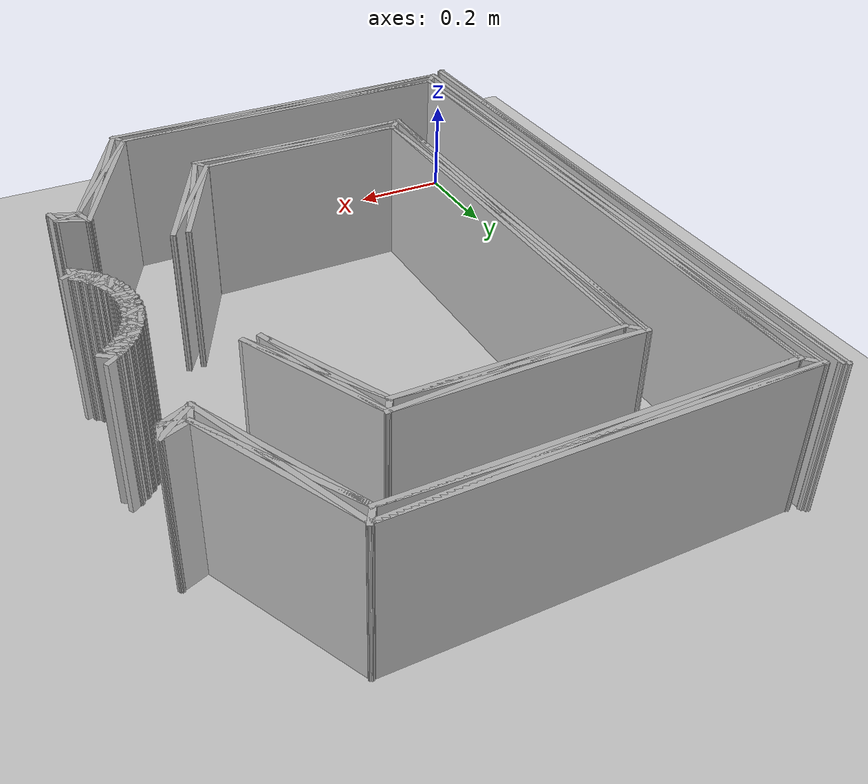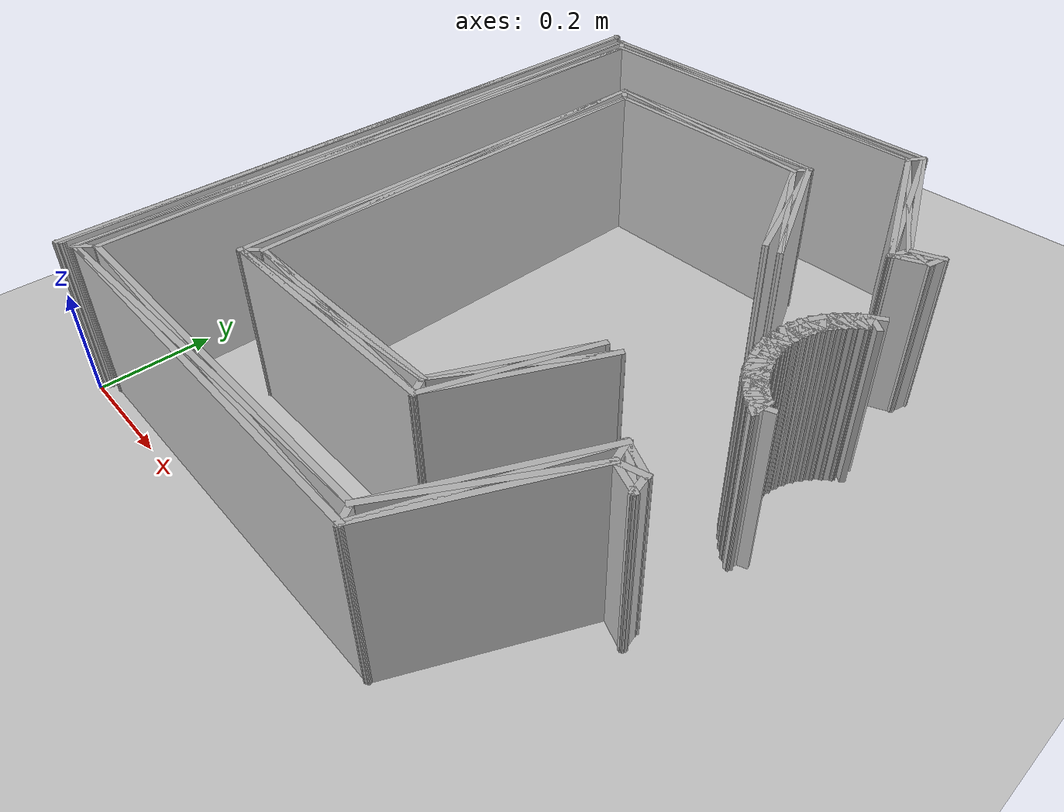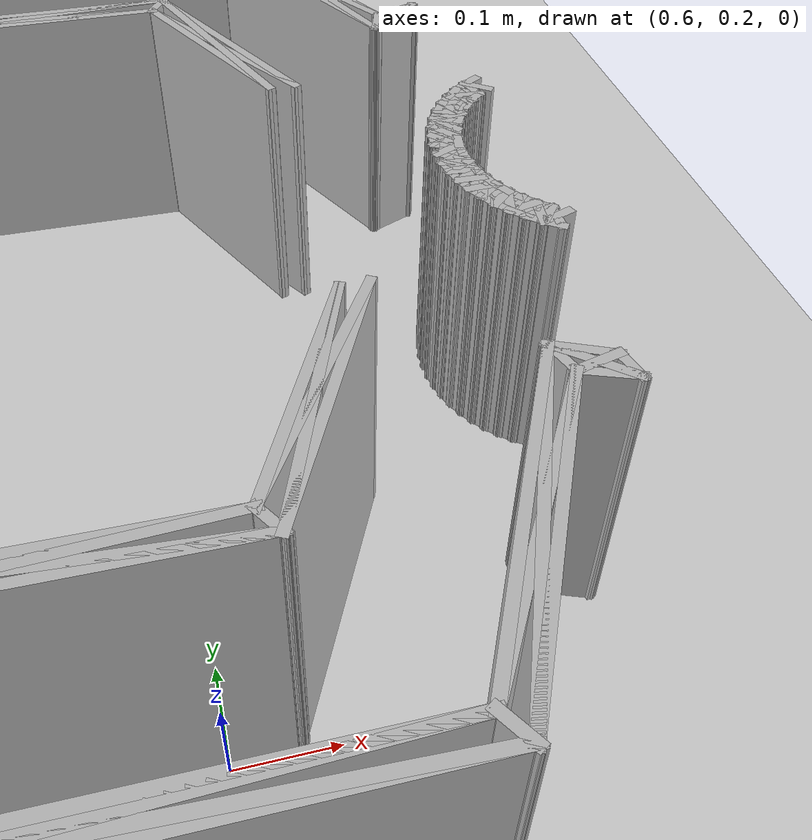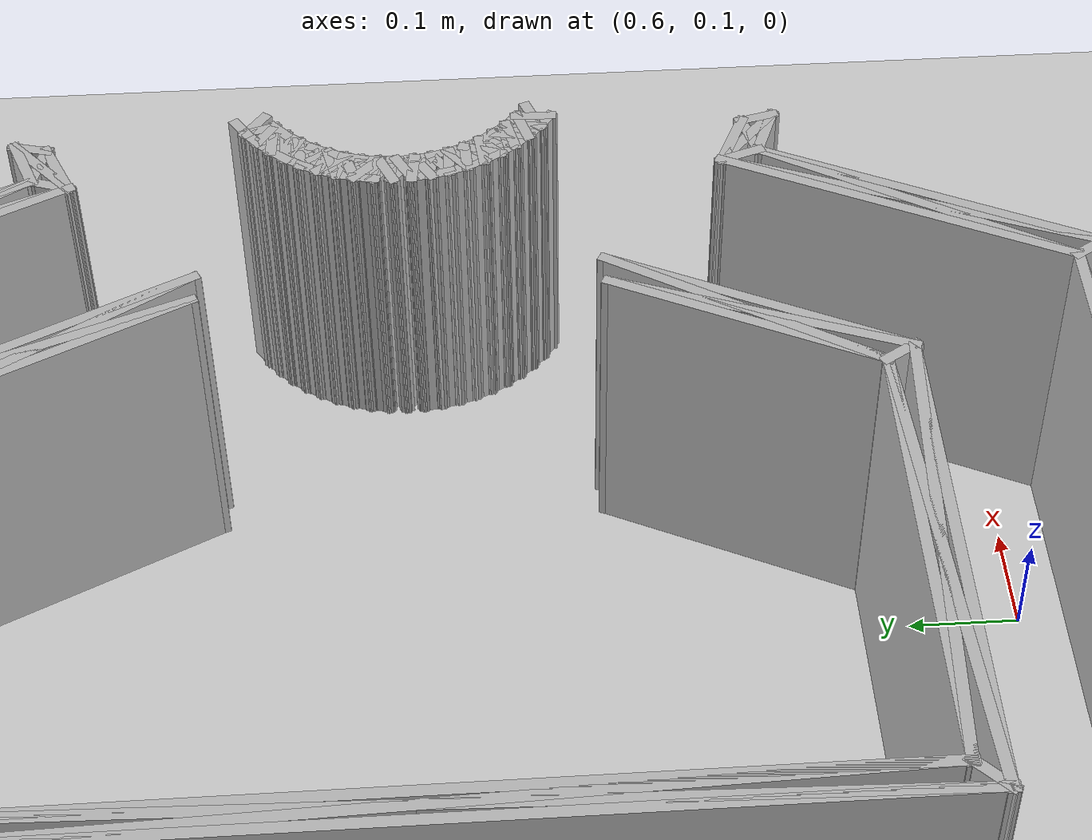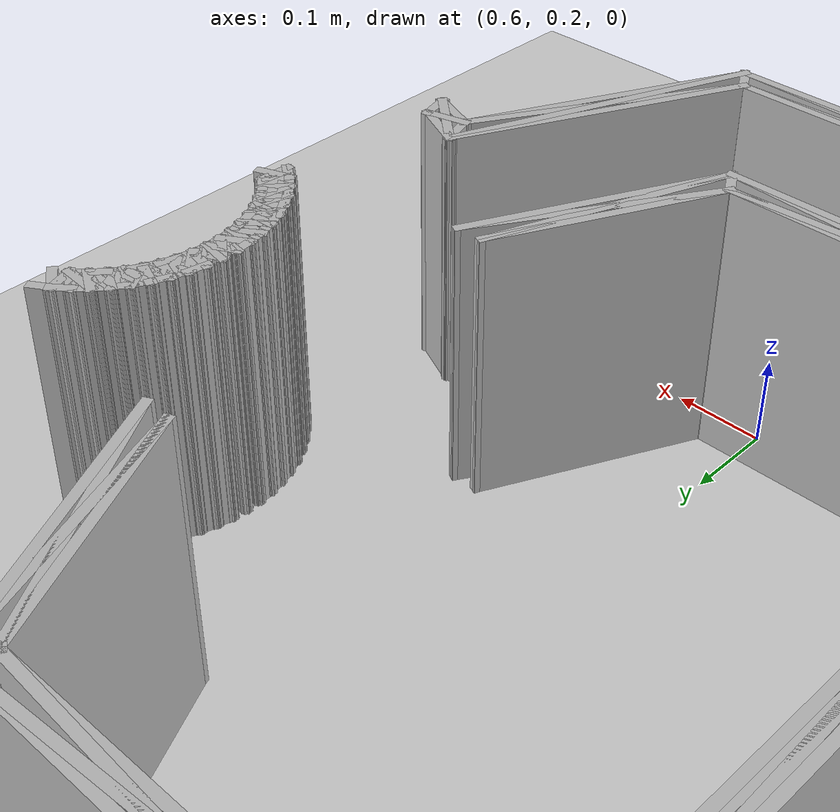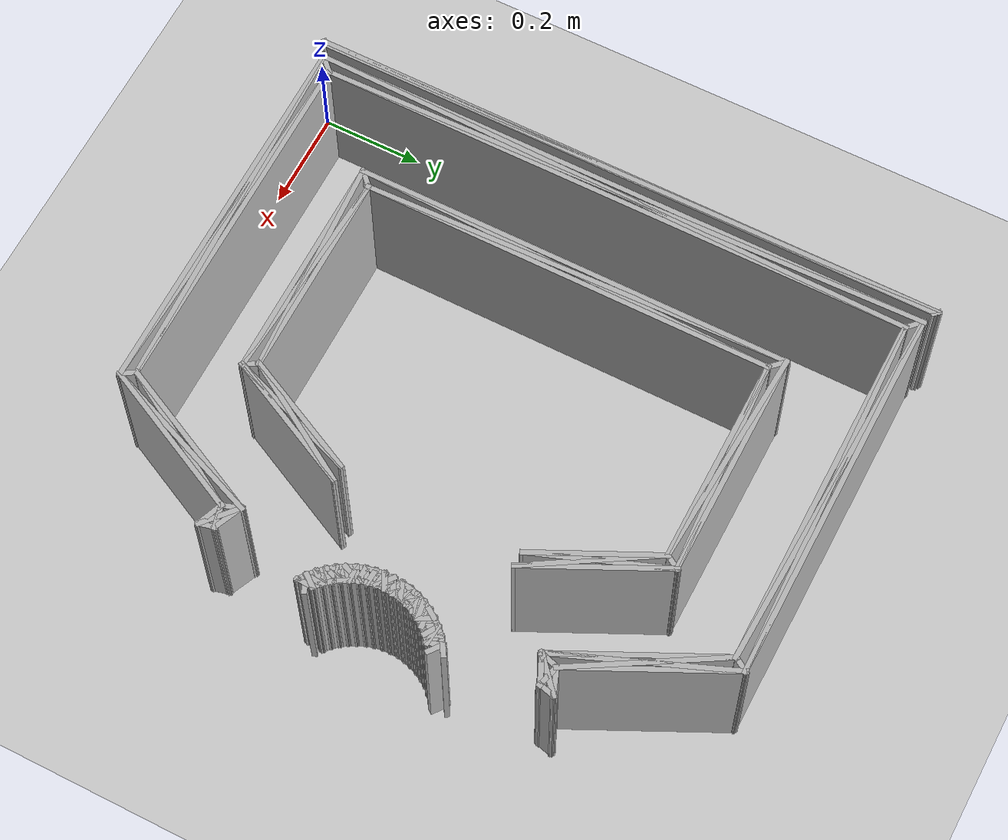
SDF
<sdf version="1.8">
 <world name="rosy_road">
  <model name="ground_plane">
   <link name="l">
    <visual name="v"><geometry><plane><normal>0 0 1</normal><size>4 2</size></plane></geometry></visual>
    <collision name="v"><geometry><plane><normal>0 0 1</normal><size>4 2</size></plane></geometry></collision>
   </link>
  </model>
  <model name="walls">
   <static>true</static>
   <link name="wall_000">
    <pose>0.0000 0.6425 0.150 0 0 1.5708</pose>
    <visual name="v"><geometry><box><size>1.2721 0.0100 0.300</size></box></geometry></visual>
    <collision name="c"><geometry><box><size>1.2721 0.0100 0.300</size></box></geometry></collision>
   </link>
   <link name="wall_001">
    <pose>0.0025 0.6450 0.150 0 0 -1.5668</pose>
    <visual name="v"><geometry><box><size>1.2671 0.0100 0.300</size></box></geometry></visual>
    <collision name="c"><geometry><box><size>1.2671 0.0100 0.300</size></box></geometry></collision>
   </link>
   <link name="wall_002">
    <pose>0.0025 0.0150 0.150 0 0 -2.3562</pose>
    <visual name="v"><geometry><box><size>0.0200 0.0100 0.300</size></box></geometry></visual>
    <collision name="c"><geometry><box><size>0.0200 0.0100 0.300</size></box></geometry></collision>
   </link>
   <link name="wall_003">
    <pose>0.0025 0.6401 0.150 0 0 1.5668</pose>
    <visual name="v"><geometry><box><size>1.2671 0.0100 0.300</size></box></geometry></visual>
    <collision name="c"><geometry><box><size>1.2671 0.0100 0.300</size></box></geometry></collision>
   </link>
   <link name="wall_004">
    <pose>0.0025 1.2701 0.150 0 0 2.3562</pose>
    <visual name="v"><geometry><box><size>0.0200 0.0100 0.300</size></box></geometry></visual>
    <collision name="c"><geometry><box><size>0.0200 0.0100 0.300</size></box></geometry></collision>
   </link>
   <link name="wall_007">
    <pose>0.0050 0.6425 0.150 0 0 -1.5708</pose>
    <visual name="v"><geometry><box><size>1.2621 0.0100 0.300</size></box></geometry></visual>
    <collision name="c"><geometry><box><size>1.2621 0.0100 0.300</size></box></geometry></collision>
   </link>
   <link name="wall_020">
    <pose>0.0301 0.6425 0.150 0 0 1.5708</pose>
    <visual name="v"><geometry><box><size>1.2419 0.0100 0.300</size></box></geometry></visual>
    <collision name="c"><geometry><box><size>1.2419 0.0100 0.300</size></box></geometry></collision>
   </link>
   <link name="wall_021">
    <pose>0.0425 0.6550 0.150 0 0 -1.5501</pose>
    <visual name="v"><geometry><box><size>1.2173 0.0100 0.300</size></box></geometry></visual>
    <collision name="c"><geometry><box><size>1.2173 0.0100 0.300</size></box></geometry></collision>
   </link>
   <link name="wall_022">
    <pose>0.0425 0.0400 0.150 0 0 -2.3562</pose>
    <visual name="v"><geometry><box><size>0.0472 0.0100 0.300</size></box></geometry></visual>
    <collision name="c"><geometry><box><size>0.0472 0.0100 0.300</size></box></geometry></collision>
   </link>
   <link name="wall_023">
    <pose>0.0425 0.6301 0.150 0 0 1.5501</pose>
    <visual name="v"><geometry><box><size>1.2173 0.0100 0.300</size></box></geometry></visual>
    <collision name="c"><geometry><box><size>1.2173 0.0100 0.300</size></box></geometry></collision>
   </link>
   <link name="wall_024">
    <pose>0.0425 1.2450 0.150 0 0 2.3562</pose>
    <visual name="v"><geometry><box><size>0.0472 0.0100 0.300</size></box></geometry></visual>
    <collision name="c"><geometry><box><size>0.0472 0.0100 0.300</size></box></geometry></collision>
   </link>
   <link name="wall_025">
    <pose>0.3972 1.2450 0.150 0 0 -0.0339</pose>
    <visual name="v"><geometry><box><size>0.7467 0.0100 0.300</size></box></geometry></visual>
    <collision name="c"><geometry><box><size>0.7467 0.0100 0.300</size></box></geometry></collision>
   </link>
   <link name="wall_026">
    <pose>0.4097 1.2326 0.150 0 0 3.1416</pose>
    <visual name="v"><geometry><box><size>0.7214 0.0100 0.300</size></box></geometry></visual>
    <collision name="c"><geometry><box><size>0.7214 0.0100 0.300</size></box></geometry></collision>
   </link>
   <link name="wall_027">
    <pose>0.0550 0.6425 0.150 0 0 -1.5708</pose>
    <visual name="v"><geometry><box><size>1.1921 0.0100 0.300</size></box></geometry></visual>
    <collision name="c"><geometry><box><size>1.1921 0.0100 0.300</size></box></geometry></collision>
   </link>
   <link name="wall_028">
    <pose>0.4097 0.0525 0.150 0 0 0.0000</pose>
    <visual name="v"><geometry><box><size>0.7214 0.0100 0.300</size></box></geometry></visual>
    <collision name="c"><geometry><box><size>0.7214 0.0100 0.300</size></box></geometry></collision>
   </link>
   <link name="wall_029">
    <pose>0.3972 0.0400 0.150 0 0 -3.1077</pose>
    <visual name="v"><geometry><box><size>0.7467 0.0100 0.300</size></box></geometry></visual>
    <collision name="c"><geometry><box><size>0.7467 0.0100 0.300</size></box></geometry></collision>
   </link>
   <link name="wall_030">
    <pose>0.4051 0.0276 0.150 0 0 0.0000</pose>
    <visual name="v"><geometry><box><size>0.7620 0.0100 0.300</size></box></geometry></visual>
    <collision name="c"><geometry><box><size>0.7620 0.0100 0.300</size></box></geometry></collision>
   </link>
   <link name="wall_031">
    <pose>0.4176 0.0400 0.150 0 0 3.1073</pose>
    <visual name="v"><geometry><box><size>0.7375 0.0100 0.300</size></box></geometry></visual>
    <collision name="c"><geometry><box><size>0.7375 0.0100 0.300</size></box></geometry></collision>
   </link>
   <link name="wall_032">
    <pose>0.0425 0.0400 0.150 0 0 -2.3562</pose>
    <visual name="v"><geometry><box><size>0.0472 0.0100 0.300</size></box></geometry></visual>
    <collision name="c"><geometry><box><size>0.0472 0.0100 0.300</size></box></geometry></collision>
   </link>
   <link name="wall_033">
    <pose>0.4051 1.2575 0.150 0 0 0.0000</pose>
    <visual name="v"><geometry><box><size>0.7620 0.0100 0.300</size></box></geometry></visual>
    <collision name="c"><geometry><box><size>0.7620 0.0100 0.300</size></box></geometry></collision>
   </link>
   <link name="wall_034">
    <pose>0.4176 1.2450 0.150 0 0 -3.1073</pose>
    <visual name="v"><geometry><box><size>0.7375 0.0100 0.300</size></box></geometry></visual>
    <collision name="c"><geometry><box><size>0.7375 0.0100 0.300</size></box></geometry></collision>
   </link>
   <link name="wall_035">
    <pose>0.0425 1.2450 0.150 0 0 2.3562</pose>
    <visual name="v"><geometry><box><size>0.0472 0.0100 0.300</size></box></geometry></visual>
    <collision name="c"><geometry><box><size>0.0472 0.0100 0.300</size></box></geometry></collision>
   </link>
   <link name="wall_036">
    <pose>0.7722 0.0400 0.150 0 0 -1.0082</pose>
    <visual name="v"><geometry><box><size>0.0414 0.0100 0.300</size></box></geometry></visual>
    <collision name="c"><geometry><box><size>0.0414 0.0100 0.300</size></box></geometry></collision>
   </link>
   <link name="wall_037">
    <pose>0.8444 0.1883 0.150 0 0 1.1905</pose>
    <visual name="v"><geometry><box><size>0.3581 0.0100 0.300</size></box></geometry></visual>
    <collision name="c"><geometry><box><size>0.3581 0.0100 0.300</size></box></geometry></collision>
   </link>
   <link name="wall_038">
    <pose>0.8365 0.2008 0.150 0 0 -2.0235</pose>
    <visual name="v"><geometry><box><size>0.3417 0.0100 0.300</size></box></geometry></visual>
    <collision name="c"><geometry><box><size>0.3417 0.0100 0.300</size></box></geometry></collision>
   </link>
   <link name="wall_039">
    <pose>0.8423 0.1839 0.150 0 0 1.0359</pose>
    <visual name="v"><geometry><box><size>0.3175 0.0100 0.300</size></box></geometry></visual>
    <collision name="c"><geometry><box><size>0.3175 0.0100 0.300</size></box></geometry></collision>
   </link>
   <link name="wall_040">
    <pose>0.8501 0.1715 0.150 0 0 -2.0237</pose>
    <visual name="v"><geometry><box><size>0.3320 0.0100 0.300</size></box></geometry></visual>
    <collision name="c"><geometry><box><size>0.3320 0.0100 0.300</size></box></geometry></collision>
   </link>
   <link name="wall_041">
    <pose>0.7722 1.2450 0.150 0 0 1.0082</pose>
    <visual name="v"><geometry><box><size>0.0414 0.0100 0.300</size></box></geometry></visual>
    <collision name="c"><geometry><box><size>0.0414 0.0100 0.300</size></box></geometry></collision>
   </link>
   <link name="wall_042">
    <pose>0.8444 1.0968 0.150 0 0 -1.1905</pose>
    <visual name="v"><geometry><box><size>0.3581 0.0100 0.300</size></box></geometry></visual>
    <collision name="c"><geometry><box><size>0.3581 0.0100 0.300</size></box></geometry></collision>
   </link>
   <link name="wall_043">
    <pose>0.8365 1.0843 0.150 0 0 2.0235</pose>
    <visual name="v"><geometry><box><size>0.3417 0.0100 0.300</size></box></geometry></visual>
    <collision name="c"><geometry><box><size>0.3417 0.0100 0.300</size></box></geometry></collision>
   </link>
   <link name="wall_044">
    <pose>0.8423 1.1012 0.150 0 0 -1.0359</pose>
    <visual name="v"><geometry><box><size>0.3175 0.0100 0.300</size></box></geometry></visual>
    <collision name="c"><geometry><box><size>0.3175 0.0100 0.300</size></box></geometry></collision>
   </link>
   <link name="wall_045">
    <pose>0.8501 1.1137 0.150 0 0 2.0237</pose>
    <visual name="v"><geometry><box><size>0.3320 0.0100 0.300</size></box></geometry></visual>
    <collision name="c"><geometry><box><size>0.3320 0.0100 0.300</size></box></geometry></collision>
   </link>
   <link name="wall_046">
    <pose>0.9143 0.3322 0.150 0 0 -1.2419</pose>
    <visual name="v"><geometry><box><size>0.0476 0.0100 0.300</size></box></geometry></visual>
    <collision name="c"><geometry><box><size>0.0476 0.0100 0.300</size></box></geometry></collision>
   </link>
   <link name="wall_047">
    <pose>0.9405 0.3206 0.150 0 0 0.2519</pose>
    <visual name="v"><geometry><box><size>0.0541 0.0100 0.300</size></box></geometry></visual>
    <collision name="c"><geometry><box><size>0.0541 0.0100 0.300</size></box></geometry></collision>
   </link>
   <link name="wall_048">
    <pose>0.9347 0.3374 0.150 0 0 2.7241</pose>
    <visual name="v"><geometry><box><size>0.0692 0.0100 0.300</size></box></geometry></visual>
    <collision name="c"><geometry><box><size>0.0692 0.0100 0.300</size></box></geometry></collision>
   </link>
   <link name="wall_049">
    <pose>0.9383 0.3231 0.150 0 0 -0.7162</pose>
    <visual name="v"><geometry><box><size>0.0907 0.0100 0.300</size></box></geometry></visual>
    <collision name="c"><geometry><box><size>0.0907 0.0100 0.300</size></box></geometry></collision>
   </link>
   <link name="wall_050">
    <pose>0.9440 0.3063 0.150 0 0 2.7821</pose>
    <visual name="v"><geometry><box><size>0.0632 0.0100 0.300</size></box></geometry></visual>
    <collision name="c"><geometry><box><size>0.0632 0.0100 0.300</size></box></geometry></collision>
   </link>
   <link name="wall_051">
    <pose>0.9143 0.9530 0.150 0 0 1.2419</pose>
    <visual name="v"><geometry><box><size>0.0476 0.0100 0.300</size></box></geometry></visual>
    <collision name="c"><geometry><box><size>0.0476 0.0100 0.300</size></box></geometry></collision>
   </link>
   <link name="wall_052">
    <pose>0.9405 0.9645 0.150 0 0 -0.2519</pose>
    <visual name="v"><geometry><box><size>0.0541 0.0100 0.300</size></box></geometry></visual>
    <collision name="c"><geometry><box><size>0.0541 0.0100 0.300</size></box></geometry></collision>
   </link>
   <link name="wall_053">
    <pose>0.9347 0.9477 0.150 0 0 -2.7241</pose>
    <visual name="v"><geometry><box><size>0.0692 0.0100 0.300</size></box></geometry></visual>
    <collision name="c"><geometry><box><size>0.0692 0.0100 0.300</size></box></geometry></collision>
   </link>
   <link name="wall_054">
    <pose>0.9383 0.9620 0.150 0 0 0.7162</pose>
    <visual name="v"><geometry><box><size>0.0907 0.0100 0.300</size></box></geometry></visual>
    <collision name="c"><geometry><box><size>0.0907 0.0100 0.300</size></box></geometry></collision>
   </link>
   <link name="wall_055">
    <pose>0.9440 0.9788 0.150 0 0 -2.7821</pose>
    <visual name="v"><geometry><box><size>0.0632 0.0100 0.300</size></box></geometry></visual>
    <collision name="c"><geometry><box><size>0.0632 0.0100 0.300</size></box></geometry></collision>
   </link>
   <link name="wall_056">
    <pose>0.9645 0.3115 0.150 0 0 -1.3266</pose>
    <visual name="v"><geometry><box><size>0.0414 0.0100 0.300</size></box></geometry></visual>
    <collision name="c"><geometry><box><size>0.0414 0.0100 0.300</size></box></geometry></collision>
   </link>
   <link name="wall_061">
    <pose>0.9645 0.9735 0.150 0 0 1.3266</pose>
    <visual name="v"><geometry><box><size>0.0414 0.0100 0.300</size></box></geometry></visual>
    <collision name="c"><geometry><box><size>0.0414 0.0100 0.300</size></box></geometry></collision>
   </link>
   <link name="wall_387">
    <pose>0.2151 0.6425 0.150 0 0 1.5708</pose>
    <visual name="v"><geometry><box><size>0.8721 0.0100 0.300</size></box></geometry></visual>
    <collision name="c"><geometry><box><size>0.8721 0.0100 0.300</size></box></geometry></collision>
   </link>
   <link name="wall_388">
    <pose>0.2276 0.6551 0.150 0 0 -1.5410</pose>
    <visual name="v"><geometry><box><size>0.8474 0.0100 0.300</size></box></geometry></visual>
    <collision name="c"><geometry><box><size>0.8474 0.0100 0.300</size></box></geometry></collision>
   </link>
   <link name="wall_389">
    <pose>0.2276 0.2251 0.150 0 0 -2.3522</pose>
    <visual name="v"><geometry><box><size>0.0474 0.0100 0.300</size></box></geometry></visual>
    <collision name="c"><geometry><box><size>0.0474 0.0100 0.300</size></box></geometry></collision>
   </link>
   <link name="wall_390">
    <pose>0.2276 0.6300 0.150 0 0 1.5410</pose>
    <visual name="v"><geometry><box><size>0.8474 0.0100 0.300</size></box></geometry></visual>
    <collision name="c"><geometry><box><size>0.8474 0.0100 0.300</size></box></geometry></collision>
   </link>
   <link name="wall_391">
    <pose>0.2276 1.0600 0.150 0 0 2.3522</pose>
    <visual name="v"><geometry><box><size>0.0474 0.0100 0.300</size></box></geometry></visual>
    <collision name="c"><geometry><box><size>0.0474 0.0100 0.300</size></box></geometry></collision>
   </link>
   <link name="wall_392">
    <pose>0.4319 1.0600 0.150 0 0 -0.0578</pose>
    <visual name="v"><geometry><box><size>0.4463 0.0100 0.300</size></box></geometry></visual>
    <collision name="c"><geometry><box><size>0.4463 0.0100 0.300</size></box></geometry></collision>
   </link>
   <link name="wall_393">
    <pose>0.4444 1.0475 0.150 0 0 3.1416</pose>
    <visual name="v"><geometry><box><size>0.4207 0.0100 0.300</size></box></geometry></visual>
    <collision name="c"><geometry><box><size>0.4207 0.0100 0.300</size></box></geometry></collision>
   </link>
   <link name="wall_394">
    <pose>0.2400 0.6425 0.150 0 0 -1.5708</pose>
    <visual name="v"><geometry><box><size>0.8219 0.0100 0.300</size></box></geometry></visual>
    <collision name="c"><geometry><box><size>0.8219 0.0100 0.300</size></box></geometry></collision>
   </link>
   <link name="wall_395">
    <pose>0.4444 0.2376 0.150 0 0 0.0000</pose>
    <visual name="v"><geometry><box><size>0.4207 0.0100 0.300</size></box></geometry></visual>
    <collision name="c"><geometry><box><size>0.4207 0.0100 0.300</size></box></geometry></collision>
   </link>
   <link name="wall_396">
    <pose>0.4319 0.2251 0.150 0 0 -3.0838</pose>
    <visual name="v"><geometry><box><size>0.4463 0.0100 0.300</size></box></geometry></visual>
    <collision name="c"><geometry><box><size>0.4463 0.0100 0.300</size></box></geometry></collision>
   </link>
   <link name="wall_397">
    <pose>0.4397 0.2125 0.150 0 0 0.0000</pose>
    <visual name="v"><geometry><box><size>0.4612 0.0100 0.300</size></box></geometry></visual>
    <collision name="c"><geometry><box><size>0.4612 0.0100 0.300</size></box></geometry></collision>
   </link>
   <link name="wall_398">
    <pose>0.4521 0.2251 0.150 0 0 3.0825</pose>
    <visual name="v"><geometry><box><size>0.4370 0.0100 0.300</size></box></geometry></visual>
    <collision name="c"><geometry><box><size>0.4370 0.0100 0.300</size></box></geometry></collision>
   </link>
   <link name="wall_399">
    <pose>0.2276 0.2251 0.150 0 0 -2.3522</pose>
    <visual name="v"><geometry><box><size>0.0474 0.0100 0.300</size></box></geometry></visual>
    <collision name="c"><geometry><box><size>0.0474 0.0100 0.300</size></box></geometry></collision>
   </link>
   <link name="wall_400">
    <pose>0.4397 1.0726 0.150 0 0 0.0000</pose>
    <visual name="v"><geometry><box><size>0.4612 0.0100 0.300</size></box></geometry></visual>
    <collision name="c"><geometry><box><size>0.4612 0.0100 0.300</size></box></geometry></collision>
   </link>
   <link name="wall_401">
    <pose>0.4521 1.0600 0.150 0 0 -3.0825</pose>
    <visual name="v"><geometry><box><size>0.4370 0.0100 0.300</size></box></geometry></visual>
    <collision name="c"><geometry><box><size>0.4370 0.0100 0.300</size></box></geometry></collision>
   </link>
   <link name="wall_402">
    <pose>0.2276 1.0600 0.150 0 0 2.3522</pose>
    <visual name="v"><geometry><box><size>0.0474 0.0100 0.300</size></box></geometry></visual>
    <collision name="c"><geometry><box><size>0.0474 0.0100 0.300</size></box></geometry></collision>
   </link>
   <link name="wall_403">
    <pose>0.6565 0.2251 0.150 0 0 -1.0147</pose>
    <visual name="v"><geometry><box><size>0.0416 0.0100 0.300</size></box></geometry></visual>
    <collision name="c"><geometry><box><size>0.0416 0.0100 0.300</size></box></geometry></collision>
   </link>
   <link name="wall_404">
    <pose>0.7113 0.3376 0.150 0 0 1.2118</pose>
    <visual name="v"><geometry><box><size>0.2792 0.0100 0.300</size></box></geometry></visual>
    <collision name="c"><geometry><box><size>0.2792 0.0100 0.300</size></box></geometry></collision>
   </link>
   <link name="wall_405">
    <pose>0.7035 0.3501 0.150 0 0 -2.0235</pose>
    <visual name="v"><geometry><box><size>0.2623 0.0100 0.300</size></box></geometry></visual>
    <collision name="c"><geometry><box><size>0.2623 0.0100 0.300</size></box></geometry></collision>
   </link>
   <link name="wall_406">
    <pose>0.7177 0.3508 0.150 0 0 1.0235</pose>
    <visual name="v"><geometry><box><size>0.2770 0.0100 0.300</size></box></geometry></visual>
    <collision name="c"><geometry><box><size>0.2770 0.0100 0.300</size></box></geometry></collision>
   </link>
   <link name="wall_407">
    <pose>0.7255 0.3382 0.150 0 0 -2.0236</pose>
    <visual name="v"><geometry><box><size>0.2916 0.0100 0.300</size></box></geometry></visual>
    <collision name="c"><geometry><box><size>0.2916 0.0100 0.300</size></box></geometry></collision>
   </link>
   <link name="wall_408">
    <pose>0.6565 1.0600 0.150 0 0 1.0147</pose>
    <visual name="v"><geometry><box><size>0.0416 0.0100 0.300</size></box></geometry></visual>
    <collision name="c"><geometry><box><size>0.0416 0.0100 0.300</size></box></geometry></collision>
   </link>
   <link name="wall_409">
    <pose>0.7113 0.9475 0.150 0 0 -1.2118</pose>
    <visual name="v"><geometry><box><size>0.2792 0.0100 0.300</size></box></geometry></visual>
    <collision name="c"><geometry><box><size>0.2792 0.0100 0.300</size></box></geometry></collision>
   </link>
   <link name="wall_410">
    <pose>0.7035 0.9350 0.150 0 0 2.0235</pose>
    <visual name="v"><geometry><box><size>0.2623 0.0100 0.300</size></box></geometry></visual>
    <collision name="c"><geometry><box><size>0.2623 0.0100 0.300</size></box></geometry></collision>
   </link>
   <link name="wall_411">
    <pose>0.7177 0.9344 0.150 0 0 -1.0235</pose>
    <visual name="v"><geometry><box><size>0.2770 0.0100 0.300</size></box></geometry></visual>
    <collision name="c"><geometry><box><size>0.2770 0.0100 0.300</size></box></geometry></collision>
   </link>
   <link name="wall_412">
    <pose>0.7255 0.9469 0.150 0 0 2.0236</pose>
    <visual name="v"><geometry><box><size>0.2916 0.0100 0.300</size></box></geometry></visual>
    <collision name="c"><geometry><box><size>0.2916 0.0100 0.300</size></box></geometry></collision>
   </link>
   <link name="wall_413">
    <pose>0.9042 0.6210 0.150 0 0 -1.4371</pose>
    <visual name="v"><geometry><box><size>0.0293 0.0100 0.300</size></box></geometry></visual>
    <collision name="c"><geometry><box><size>0.0293 0.0100 0.300</size></box></geometry></collision>
   </link>
   <link name="wall_414">
    <pose>0.9168 0.6195 0.150 0 0 0.5480</pose>
    <visual name="v"><geometry><box><size>0.0391 0.0100 0.300</size></box></geometry></visual>
    <collision name="c"><geometry><box><size>0.0391 0.0100 0.300</size></box></geometry></collision>
   </link>
   <link name="wall_415">
    <pose>0.9155 0.6368 0.150 0 0 2.4749</pose>
    <visual name="v"><geometry><box><size>0.0448 0.0100 0.300</size></box></geometry></visual>
    <collision name="c"><geometry><box><size>0.0448 0.0100 0.300</size></box></geometry></collision>
   </link>
   <link name="wall_416">
    <pose>0.9055 0.6725 0.150 0 0 1.3894</pose>
    <visual name="v"><geometry><box><size>0.0292 0.0100 0.300</size></box></geometry></visual>
    <collision name="c"><geometry><box><size>0.0292 0.0100 0.300</size></box></geometry></collision>
   </link>
   <link name="wall_417">
    <pose>0.9177 0.6697 0.150 0 0 -0.8104</pose>
    <visual name="v"><geometry><box><size>0.0431 0.0100 0.300</size></box></geometry></visual>
    <collision name="c"><geometry><box><size>0.0431 0.0100 0.300</size></box></geometry></collision>
   </link>
   <link name="wall_418">
    <pose>0.9155 0.6527 0.150 0 0 -2.7191</pose>
    <visual name="v"><geometry><box><size>0.0403 0.0100 0.300</size></box></geometry></visual>
    <collision name="c"><geometry><box><size>0.0403 0.0100 0.300</size></box></geometry></collision>
   </link>
   <link name="wall_419">
    <pose>0.9150 0.6447 0.150 0 0 -0.1749</pose>
    <visual name="v"><geometry><box><size>0.0373 0.0100 0.300</size></box></geometry></visual>
    <collision name="c"><geometry><box><size>0.0373 0.0100 0.300</size></box></geometry></collision>
   </link>
   <link name="wall_420">
    <pose>0.9153 0.6361 0.150 0 0 -2.6569</pose>
    <visual name="v"><geometry><box><size>0.0397 0.0100 0.300</size></box></geometry></visual>
    <collision name="c"><geometry><box><size>0.0397 0.0100 0.300</size></box></geometry></collision>
   </link>
   <link name="wall_421">
    <pose>0.9157 0.6281 0.150 0 0 -0.1176</pose>
    <visual name="v"><geometry><box><size>0.0376 0.0100 0.300</size></box></geometry></visual>
    <collision name="c"><geometry><box><size>0.0376 0.0100 0.300</size></box></geometry></collision>
   </link>
   <link name="wall_422">
    <pose>0.9280 0.6345 0.150 0 0 1.6273</pose>
    <visual name="v"><geometry><box><size>0.0279 0.0100 0.300</size></box></geometry></visual>
    <collision name="c"><geometry><box><size>0.0279 0.0100 0.300</size></box></geometry></collision>
   </link>
   <link name="wall_423">
    <pose>0.9157 0.6533 0.150 0 0 2.4004</pose>
    <visual name="v"><geometry><box><size>0.0440 0.0100 0.300</size></box></geometry></visual>
    <collision name="c"><geometry><box><size>0.0440 0.0100 0.300</size></box></geometry></collision>
   </link>
   <link name="wall_424">
    <pose>0.9162 0.6613 0.150 0 0 -0.2247</pose>
    <visual name="v"><geometry><box><size>0.0371 0.0100 0.300</size></box></geometry></visual>
    <collision name="c"><geometry><box><size>0.0371 0.0100 0.300</size></box></geometry></collision>
   </link>
   <link name="wall_425">
    <pose>0.9280 0.6505 0.150 0 0 -1.6270</pose>
    <visual name="v"><geometry><box><size>0.0280 0.0100 0.300</size></box></geometry></visual>
    <collision name="c"><geometry><box><size>0.0280 0.0100 0.300</size></box></geometry></collision>
   </link>
   <link name="wall_426">
    <pose>0.9170 0.6202 0.150 0 0 -0.5896</pose>
    <visual name="v"><geometry><box><size>0.0458 0.0100 0.300</size></box></geometry></visual>
    <collision name="c"><geometry><box><size>0.0458 0.0100 0.300</size></box></geometry></collision>
   </link>
   <link name="wall_427">
    <pose>0.9297 0.6187 0.150 0 0 1.7400</pose>
    <visual name="v"><geometry><box><size>0.0280 0.0100 0.300</size></box></geometry></visual>
    <collision name="c"><geometry><box><size>0.0280 0.0100 0.300</size></box></geometry></collision>
   </link>
   <link name="wall_428">
    <pose>0.9175 0.6692 0.150 0 0 0.3588</pose>
    <visual name="v"><geometry><box><size>0.0410 0.0100 0.300</size></box></geometry></visual>
    <collision name="c"><geometry><box><size>0.0410 0.0100 0.300</size></box></geometry></collision>
   </link>
   <link name="wall_429">
    <pose>0.9297 0.6664 0.150 0 0 -1.7400</pose>
    <visual name="v"><geometry><box><size>0.0280 0.0100 0.300</size></box></geometry></visual>
    <collision name="c"><geometry><box><size>0.0280 0.0100 0.300</size></box></geometry></collision>
   </link>
   <link name="wall_430">
    <pose>0.9073 0.6041 0.150 0 0 -1.3427</pose>
    <visual name="v"><geometry><box><size>0.0292 0.0100 0.300</size></box></geometry></visual>
    <collision name="c"><geometry><box><size>0.0292 0.0100 0.300</size></box></geometry></collision>
   </link>
   <link name="wall_431">
    <pose>0.9202 0.6032 0.150 0 0 0.6036</pose>
    <visual name="v"><geometry><box><size>0.0386 0.0100 0.300</size></box></geometry></visual>
    <collision name="c"><geometry><box><size>0.0386 0.0100 0.300</size></box></geometry></collision>
   </link>
   <link name="wall_432">
    <pose>0.9182 0.6117 0.150 0 0 3.0758</pose>
    <visual name="v"><geometry><box><size>0.0379 0.0100 0.300</size></box></geometry></visual>
    <collision name="c"><geometry><box><size>0.0379 0.0100 0.300</size></box></geometry></collision>
   </link>
   <link name="wall_433">
    <pose>0.9333 0.6031 0.150 0 0 -1.2908</pose>
    <visual name="v"><geometry><box><size>0.0279 0.0100 0.300</size></box></geometry></visual>
    <collision name="c"><geometry><box><size>0.0279 0.0100 0.300</size></box></geometry></collision>
   </link>
   <link name="wall_434">
    <pose>0.9224 0.5956 0.150 0 0 3.1340</pose>
    <visual name="v"><geometry><box><size>0.0383 0.0100 0.300</size></box></geometry></visual>
    <collision name="c"><geometry><box><size>0.0383 0.0100 0.300</size></box></geometry></collision>
   </link>
   <link name="wall_435">
    <pose>0.9120 0.5875 0.150 0 0 -1.2344</pose>
    <visual name="v"><geometry><box><size>0.0293 0.0100 0.300</size></box></geometry></visual>
    <collision name="c"><geometry><box><size>0.0293 0.0100 0.300</size></box></geometry></collision>
   </link>
   <link name="wall_436">
    <pose>0.9252 0.5875 0.150 0 0 0.6634</pose>
    <visual name="v"><geometry><box><size>0.0381 0.0100 0.300</size></box></geometry></visual>
    <collision name="c"><geometry><box><size>0.0381 0.0100 0.300</size></box></geometry></collision>
   </link>
   <link name="wall_437">
    <pose>0.9289 0.5796 0.150 0 0 -1.9680</pose>
    <visual name="v"><geometry><box><size>0.0464 0.0100 0.300</size></box></geometry></visual>
    <collision name="c"><geometry><box><size>0.0464 0.0100 0.300</size></box></geometry></collision>
   </link>
   <link name="wall_438">
    <pose>0.9185 0.5716 0.150 0 0 2.0085</pose>
    <visual name="v"><geometry><box><size>0.0292 0.0100 0.300</size></box></geometry></visual>
    <collision name="c"><geometry><box><size>0.0292 0.0100 0.300</size></box></geometry></collision>
   </link>
   <link name="wall_439">
    <pose>0.9283 0.5800 0.150 0 0 0.0485</pose>
    <visual name="v"><geometry><box><size>0.0388 0.0100 0.300</size></box></geometry></visual>
    <collision name="c"><geometry><box><size>0.0388 0.0100 0.300</size></box></geometry></collision>
   </link>
   <link name="wall_440">
    <pose>0.9386 0.5881 0.150 0 0 1.9675</pose>
    <visual name="v"><geometry><box><size>0.0280 0.0100 0.300</size></box></geometry></visual>
    <collision name="c"><geometry><box><size>0.0280 0.0100 0.300</size></box></geometry></collision>
   </link>
   <link name="wall_441">
    <pose>0.9094 0.6893 0.150 0 0 1.2893</pose>
    <visual name="v"><geometry><box><size>0.0293 0.0100 0.300</size></box></geometry></visual>
    <collision name="c"><geometry><box><size>0.0293 0.0100 0.300</size></box></geometry></collision>
   </link>
   <link name="wall_442">
    <pose>0.9214 0.6860 0.150 0 0 -0.8790</pose>
    <visual name="v"><geometry><box><size>0.0423 0.0100 0.300</size></box></geometry></visual>
    <collision name="c"><geometry><box><size>0.0423 0.0100 0.300</size></box></geometry></collision>
   </link>
   <link name="wall_443">
    <pose>0.9190 0.6776 0.150 0 0 2.8704</pose>
    <visual name="v"><geometry><box><size>0.0370 0.0100 0.300</size></box></geometry></visual>
    <collision name="c"><geometry><box><size>0.0370 0.0100 0.300</size></box></geometry></collision>
   </link>
   <link name="wall_444">
    <pose>0.9213 0.6853 0.150 0 0 0.2931</pose>
    <visual name="v"><geometry><box><size>0.0418 0.0100 0.300</size></box></geometry></visual>
    <collision name="c"><geometry><box><size>0.0418 0.0100 0.300</size></box></geometry></collision>
   </link>
   <link name="wall_445">
    <pose>0.9333 0.6820 0.150 0 0 -1.8508</pose>
    <visual name="v"><geometry><box><size>0.0279 0.0100 0.300</size></box></geometry></visual>
    <collision name="c"><geometry><box><size>0.0279 0.0100 0.300</size></box></geometry></collision>
   </link>
   <link name="wall_446">
    <pose>0.9150 0.7056 0.150 0 0 1.1849</pose>
    <visual name="v"><geometry><box><size>0.0293 0.0100 0.300</size></box></geometry></visual>
    <collision name="c"><geometry><box><size>0.0293 0.0100 0.300</size></box></geometry></collision>
   </link>
   <link name="wall_447">
    <pose>0.9269 0.7016 0.150 0 0 -0.9490</pose>
    <visual name="v"><geometry><box><size>0.0415 0.0100 0.300</size></box></geometry></visual>
    <collision name="c"><geometry><box><size>0.0415 0.0100 0.300</size></box></geometry></collision>
   </link>
   <link name="wall_448">
    <pose>0.9236 0.6936 0.150 0 0 2.8160</pose>
    <visual name="v"><geometry><box><size>0.0370 0.0100 0.300</size></box></geometry></visual>
    <collision name="c"><geometry><box><size>0.0370 0.0100 0.300</size></box></geometry></collision>
   </link>
   <link name="wall_449">
    <pose>0.9267 0.7010 0.150 0 0 0.2236</pose>
    <visual name="v"><geometry><box><size>0.0427 0.0100 0.300</size></box></geometry></visual>
    <collision name="c"><geometry><box><size>0.0427 0.0100 0.300</size></box></geometry></collision>
   </link>
   <link name="wall_450">
    <pose>0.9386 0.6970 0.150 0 0 -1.9675</pose>
    <visual name="v"><geometry><box><size>0.0280 0.0100 0.300</size></box></geometry></visual>
    <collision name="c"><geometry><box><size>0.0280 0.0100 0.300</size></box></geometry></collision>
   </link>
   <link name="wall_451">
    <pose>0.9267 0.5564 0.150 0 0 -1.0294</pose>
    <visual name="v"><geometry><box><size>0.0293 0.0100 0.300</size></box></geometry></visual>
    <collision name="c"><geometry><box><size>0.0293 0.0100 0.300</size></box></geometry></collision>
   </link>
   <link name="wall_452">
    <pose>0.9364 0.5649 0.150 0 0 1.2481</pose>
    <visual name="v"><geometry><box><size>0.0454 0.0100 0.300</size></box></geometry></visual>
    <collision name="c"><geometry><box><size>0.0454 0.0100 0.300</size></box></geometry></collision>
   </link>
   <link name="wall_453">
    <pose>0.9320 0.5723 0.150 0 0 -2.4275</pose>
    <visual name="v"><geometry><box><size>0.0378 0.0100 0.300</size></box></geometry></visual>
    <collision name="c"><geometry><box><size>0.0378 0.0100 0.300</size></box></geometry></collision>
   </link>
   <link name="wall_454">
    <pose>0.9358 0.5653 0.150 0 0 0.1062</pose>
    <visual name="v"><geometry><box><size>0.0394 0.0100 0.300</size></box></geometry></visual>
    <collision name="c"><geometry><box><size>0.0394 0.0100 0.300</size></box></geometry></collision>
   </link>
   <link name="wall_455">
    <pose>0.9456 0.5737 0.150 0 0 2.0736</pose>
    <visual name="v"><geometry><box><size>0.0280 0.0100 0.300</size></box></geometry></visual>
    <collision name="c"><geometry><box><size>0.0280 0.0100 0.300</size></box></geometry></collision>
   </link>
   <link name="wall_456">
    <pose>0.9223 0.7212 0.150 0 0 1.0812</pose>
    <visual name="v"><geometry><box><size>0.0292 0.0100 0.300</size></box></geometry></visual>
    <collision name="c"><geometry><box><size>0.0292 0.0100 0.300</size></box></geometry></collision>
   </link>
   <link name="wall_457">
    <pose>0.9340 0.7166 0.150 0 0 -1.0107</pose>
    <visual name="v"><geometry><box><size>0.0408 0.0100 0.300</size></box></geometry></visual>
    <collision name="c"><geometry><box><size>0.0408 0.0100 0.300</size></box></geometry></collision>
   </link>
   <link name="wall_458">
    <pose>0.9300 0.7090 0.150 0 0 2.7670</pose>
    <visual name="v"><geometry><box><size>0.0371 0.0100 0.300</size></box></geometry></visual>
    <collision name="c"><geometry><box><size>0.0371 0.0100 0.300</size></box></geometry></collision>
   </link>
   <link name="wall_459">
    <pose>0.9338 0.7160 0.150 0 0 0.1531</pose>
    <visual name="v"><geometry><box><size>0.0435 0.0100 0.300</size></box></geometry></visual>
    <collision name="c"><geometry><box><size>0.0435 0.0100 0.300</size></box></geometry></collision>
   </link>
   <link name="wall_460">
    <pose>0.9456 0.7114 0.150 0 0 -2.0736</pose>
    <visual name="v"><geometry><box><size>0.0280 0.0100 0.300</size></box></geometry></visual>
    <collision name="c"><geometry><box><size>0.0280 0.0100 0.300</size></box></geometry></collision>
   </link>
   <link name="wall_461">
    <pose>0.9363 0.5422 0.150 0 0 -0.9261</pose>
    <visual name="v"><geometry><box><size>0.0291 0.0100 0.300</size></box></geometry></visual>
    <collision name="c"><geometry><box><size>0.0291 0.0100 0.300</size></box></geometry></collision>
   </link>
   <link name="wall_462">
    <pose>0.9454 0.5510 0.150 0 0 1.3213</pose>
    <visual name="v"><geometry><box><size>0.0444 0.0100 0.300</size></box></geometry></visual>
    <collision name="c"><geometry><box><size>0.0444 0.0100 0.300</size></box></geometry></collision>
   </link>
   <link name="wall_463">
    <pose>0.9403 0.5579 0.150 0 0 -2.3729</pose>
    <visual name="v"><geometry><box><size>0.0375 0.0100 0.300</size></box></geometry></visual>
    <collision name="c"><geometry><box><size>0.0375 0.0100 0.300</size></box></geometry></collision>
   </link>
   <link name="wall_464">
    <pose>0.9448 0.5514 0.150 0 0 0.1693</pose>
    <visual name="v"><geometry><box><size>0.0399 0.0100 0.300</size></box></geometry></visual>
    <collision name="c"><geometry><box><size>0.0399 0.0100 0.300</size></box></geometry></collision>
   </link>
   <link name="wall_465">
    <pose>0.9540 0.5602 0.150 0 0 2.1867</pose>
    <visual name="v"><geometry><box><size>0.0279 0.0100 0.300</size></box></geometry></visual>
    <collision name="c"><geometry><box><size>0.0279 0.0100 0.300</size></box></geometry></collision>
   </link>
   <link name="wall_466">
    <pose>0.9313 0.7359 0.150 0 0 0.9748</pose>
    <visual name="v"><geometry><box><size>0.0293 0.0100 0.300</size></box></geometry></visual>
    <collision name="c"><geometry><box><size>0.0293 0.0100 0.300</size></box></geometry></collision>
   </link>
   <link name="wall_467">
    <pose>0.9427 0.7308 0.150 0 0 -1.0769</pose>
    <visual name="v"><geometry><box><size>0.0401 0.0100 0.300</size></box></geometry></visual>
    <collision name="c"><geometry><box><size>0.0401 0.0100 0.300</size></box></geometry></collision>
   </link>
   <link name="wall_468">
    <pose>0.9379 0.7236 0.150 0 0 2.7169</pose>
    <visual name="v"><geometry><box><size>0.0372 0.0100 0.300</size></box></geometry></visual>
    <collision name="c"><geometry><box><size>0.0372 0.0100 0.300</size></box></geometry></collision>
   </link>
   <link name="wall_469">
    <pose>0.9425 0.7301 0.150 0 0 0.0806</pose>
    <visual name="v"><geometry><box><size>0.0443 0.0100 0.300</size></box></geometry></visual>
    <collision name="c"><geometry><box><size>0.0443 0.0100 0.300</size></box></geometry></collision>
   </link>
   <link name="wall_470">
    <pose>0.9540 0.7249 0.150 0 0 -2.1867</pose>
    <visual name="v"><geometry><box><size>0.0279 0.0100 0.300</size></box></geometry></visual>
    <collision name="c"><geometry><box><size>0.0279 0.0100 0.300</size></box></geometry></collision>
   </link>
   <link name="wall_471">
    <pose>0.9473 0.5290 0.150 0 0 -0.8264</pose>
    <visual name="v"><geometry><box><size>0.0293 0.0100 0.300</size></box></geometry></visual>
    <collision name="c"><geometry><box><size>0.0293 0.0100 0.300</size></box></geometry></collision>
   </link>
   <link name="wall_472">
    <pose>0.9558 0.5382 0.150 0 0 1.3958</pose>
    <visual name="v"><geometry><box><size>0.0436 0.0100 0.300</size></box></geometry></visual>
    <collision name="c"><geometry><box><size>0.0436 0.0100 0.300</size></box></geometry></collision>
   </link>
   <link name="wall_473">
    <pose>0.9500 0.5445 0.150 0 0 -2.3225</pose>
    <visual name="v"><geometry><box><size>0.0372 0.0100 0.300</size></box></geometry></visual>
    <collision name="c"><geometry><box><size>0.0372 0.0100 0.300</size></box></geometry></collision>
   </link>
   <link name="wall_474">
    <pose>0.9553 0.5385 0.150 0 0 0.2289</pose>
    <visual name="v"><geometry><box><size>0.0406 0.0100 0.300</size></box></geometry></visual>
    <collision name="c"><geometry><box><size>0.0406 0.0100 0.300</size></box></geometry></collision>
   </link>
   <link name="wall_475">
    <pose>0.9640 0.5477 0.150 0 0 2.3031</pose>
    <visual name="v"><geometry><box><size>0.0280 0.0100 0.300</size></box></geometry></visual>
    <collision name="c"><geometry><box><size>0.0280 0.0100 0.300</size></box></geometry></collision>
   </link>
   <link name="wall_476">
    <pose>0.9416 0.7497 0.150 0 0 0.8761</pose>
    <visual name="v"><geometry><box><size>0.0292 0.0100 0.300</size></box></geometry></visual>
    <collision name="c"><geometry><box><size>0.0292 0.0100 0.300</size></box></geometry></collision>
   </link>
   <link name="wall_477">
    <pose>0.9528 0.7438 0.150 0 0 -1.1381</pose>
    <visual name="v"><geometry><box><size>0.0394 0.0100 0.300</size></box></geometry></visual>
    <collision name="c"><geometry><box><size>0.0394 0.0100 0.300</size></box></geometry></collision>
   </link>
   <link name="wall_478">
    <pose>0.9474 0.7372 0.150 0 0 2.6621</pose>
    <visual name="v"><geometry><box><size>0.0374 0.0100 0.300</size></box></geometry></visual>
    <collision name="c"><geometry><box><size>0.0374 0.0100 0.300</size></box></geometry></collision>
   </link>
   <link name="wall_479">
    <pose>0.9527 0.7432 0.150 0 0 0.0060</pose>
    <visual name="v"><geometry><box><size>0.0452 0.0100 0.300</size></box></geometry></visual>
    <collision name="c"><geometry><box><size>0.0452 0.0100 0.300</size></box></geometry></collision>
   </link>
   <link name="wall_480">
    <pose>0.9640 0.7373 0.150 0 0 -2.3031</pose>
    <visual name="v"><geometry><box><size>0.0280 0.0100 0.300</size></box></geometry></visual>
    <collision name="c"><geometry><box><size>0.0280 0.0100 0.300</size></box></geometry></collision>
   </link>
   <link name="wall_481">
    <pose>0.9596 0.5169 0.150 0 0 -0.7199</pose>
    <visual name="v"><geometry><box><size>0.0293 0.0100 0.300</size></box></geometry></visual>
    <collision name="c"><geometry><box><size>0.0293 0.0100 0.300</size></box></geometry></collision>
   </link>
   <link name="wall_482">
    <pose>0.9677 0.5265 0.150 0 0 1.4666</pose>
    <visual name="v"><geometry><box><size>0.0428 0.0100 0.300</size></box></geometry></visual>
    <collision name="c"><geometry><box><size>0.0428 0.0100 0.300</size></box></geometry></collision>
   </link>
   <link name="wall_483">
    <pose>0.9612 0.5322 0.150 0 0 -2.2717</pose>
    <visual name="v"><geometry><box><size>0.0371 0.0100 0.300</size></box></geometry></visual>
    <collision name="c"><geometry><box><size>0.0371 0.0100 0.300</size></box></geometry></collision>
   </link>
   <link name="wall_484">
    <pose>0.9672 0.5269 0.150 0 0 0.2937</pose>
    <visual name="v"><geometry><box><size>0.0414 0.0100 0.300</size></box></geometry></visual>
    <collision name="c"><geometry><box><size>0.0414 0.0100 0.300</size></box></geometry></collision>
   </link>
   <link name="wall_485">
    <pose>0.9752 0.5365 0.150 0 0 2.4092</pose>
    <visual name="v"><geometry><box><size>0.0280 0.0100 0.300</size></box></geometry></visual>
    <collision name="c"><geometry><box><size>0.0280 0.0100 0.300</size></box></geometry></collision>
   </link>
   <link name="wall_486">
    <pose>0.9533 0.7623 0.150 0 0 0.7732</pose>
    <visual name="v"><geometry><box><size>0.0293 0.0100 0.300</size></box></geometry></visual>
    <collision name="c"><geometry><box><size>0.0293 0.0100 0.300</size></box></geometry></collision>
   </link>
   <link name="wall_487">
    <pose>0.9644 0.7558 0.150 0 0 -1.1986</pose>
    <visual name="v"><geometry><box><size>0.0389 0.0100 0.300</size></box></geometry></visual>
    <collision name="c"><geometry><box><size>0.0389 0.0100 0.300</size></box></geometry></collision>
   </link>
   <link name="wall_488">
    <pose>0.9582 0.7498 0.150 0 0 2.6118</pose>
    <visual name="v"><geometry><box><size>0.0377 0.0100 0.300</size></box></geometry></visual>
    <collision name="c"><geometry><box><size>0.0377 0.0100 0.300</size></box></geometry></collision>
   </link>
   <link name="wall_489">
    <pose>0.9642 0.7551 0.150 0 0 -0.0673</pose>
    <visual name="v"><geometry><box><size>0.0462 0.0100 0.300</size></box></geometry></visual>
    <collision name="c"><geometry><box><size>0.0462 0.0100 0.300</size></box></geometry></collision>
   </link>
   <link name="wall_490">
    <pose>0.9752 0.7486 0.150 0 0 -2.4092</pose>
    <visual name="v"><geometry><box><size>0.0280 0.0100 0.300</size></box></geometry></visual>
    <collision name="c"><geometry><box><size>0.0280 0.0100 0.300</size></box></geometry></collision>
   </link>
   <link name="wall_491">
    <pose>0.9732 0.5062 0.150 0 0 -0.6169</pose>
    <visual name="v"><geometry><box><size>0.0293 0.0100 0.300</size></box></geometry></visual>
    <collision name="c"><geometry><box><size>0.0293 0.0100 0.300</size></box></geometry></collision>
   </link>
   <link name="wall_492">
    <pose>0.9807 0.5161 0.150 0 0 1.5374</pose>
    <visual name="v"><geometry><box><size>0.0419 0.0100 0.300</size></box></geometry></visual>
    <collision name="c"><geometry><box><size>0.0419 0.0100 0.300</size></box></geometry></collision>
   </link>
   <link name="wall_493">
    <pose>0.9737 0.5212 0.150 0 0 -2.2199</pose>
    <visual name="v"><geometry><box><size>0.0370 0.0100 0.300</size></box></geometry></visual>
    <collision name="c"><geometry><box><size>0.0370 0.0100 0.300</size></box></geometry></collision>
   </link>
   <link name="wall_494">
    <pose>0.9802 0.5165 0.150 0 0 0.3638</pose>
    <visual name="v"><geometry><box><size>0.0421 0.0100 0.300</size></box></geometry></visual>
    <collision name="c"><geometry><box><size>0.0421 0.0100 0.300</size></box></geometry></collision>
   </link>
   <link name="wall_496">
    <pose>0.9663 0.7738 0.150 0 0 0.6702</pose>
    <visual name="v"><geometry><box><size>0.0292 0.0100 0.300</size></box></geometry></visual>
    <collision name="c"><geometry><box><size>0.0292 0.0100 0.300</size></box></geometry></collision>
   </link>
   <link name="wall_497">
    <pose>0.9771 0.7665 0.150 0 0 -1.2550</pose>
    <visual name="v"><geometry><box><size>0.0384 0.0100 0.300</size></box></geometry></visual>
    <collision name="c"><geometry><box><size>0.0384 0.0100 0.300</size></box></geometry></collision>
   </link>
   <link name="wall_498">
    <pose>0.9704 0.7612 0.150 0 0 2.5557</pose>
    <visual name="v"><geometry><box><size>0.0380 0.0100 0.300</size></box></geometry></visual>
    <collision name="c"><geometry><box><size>0.0380 0.0100 0.300</size></box></geometry></collision>
   </link>
   <link name="wall_500">
    <pose>0.9836 0.7712 0.150 0 0 2.4981</pose>
    <visual name="v"><geometry><box><size>0.0385 0.0100 0.300</size></box></geometry></visual>
    <collision name="c"><geometry><box><size>0.0385 0.0100 0.300</size></box></geometry></collision>
   </link>
   <link name="wall_501">
    <pose>0.9802 0.7837 0.150 0 0 0.5654</pose>
    <visual name="v"><geometry><box><size>0.0292 0.0100 0.300</size></box></geometry></visual>
    <collision name="c"><geometry><box><size>0.0292 0.0100 0.300</size></box></geometry></collision>
   </link>
  </model>
 </world>
</sdf>
